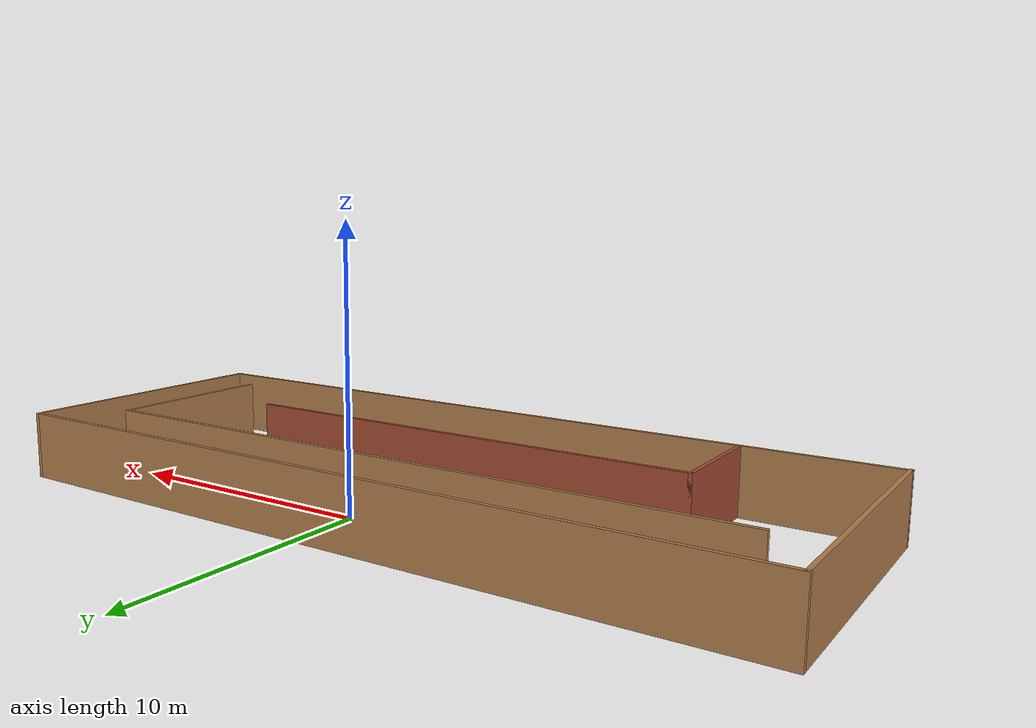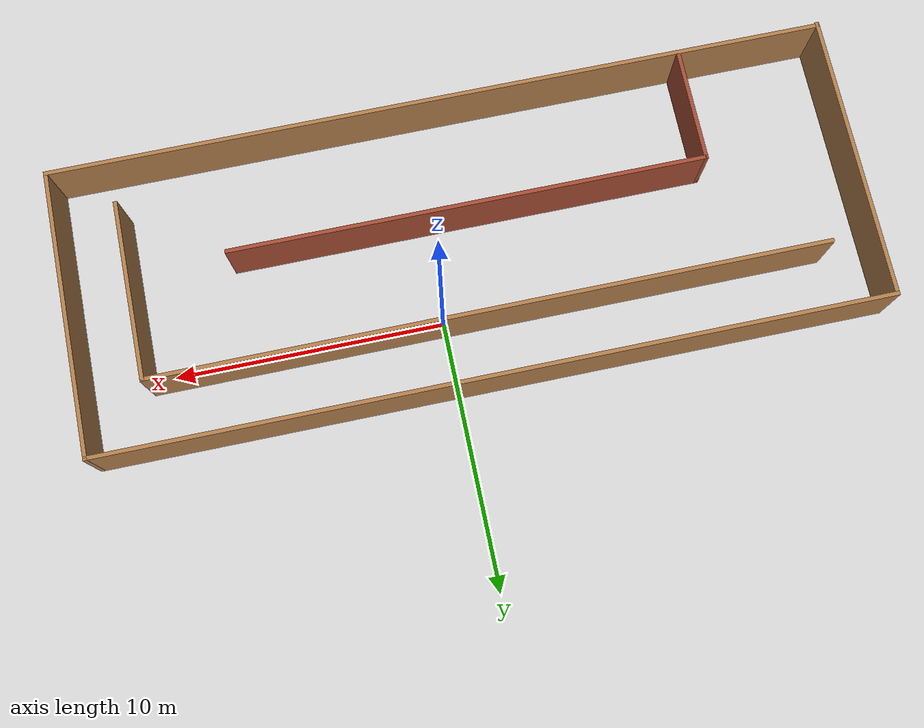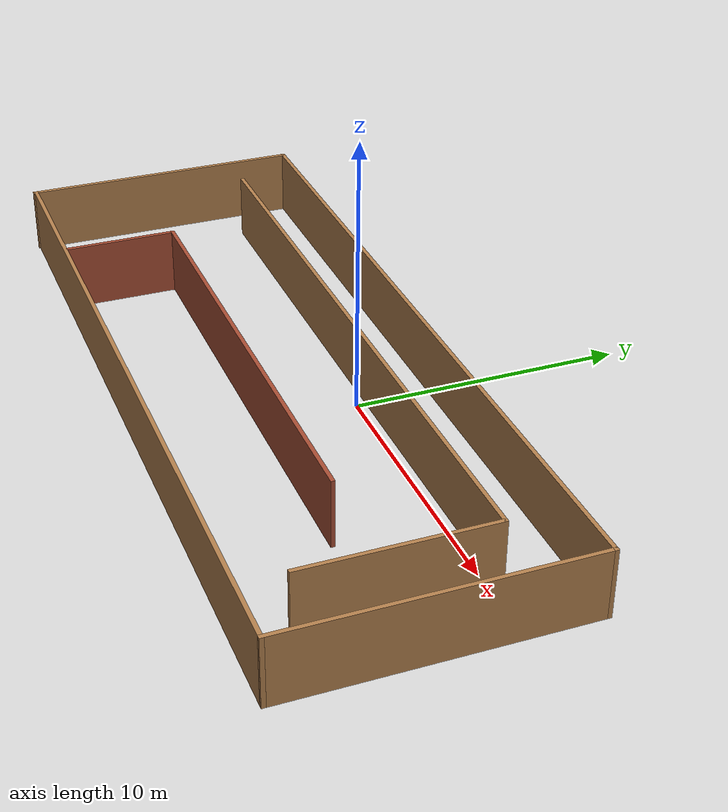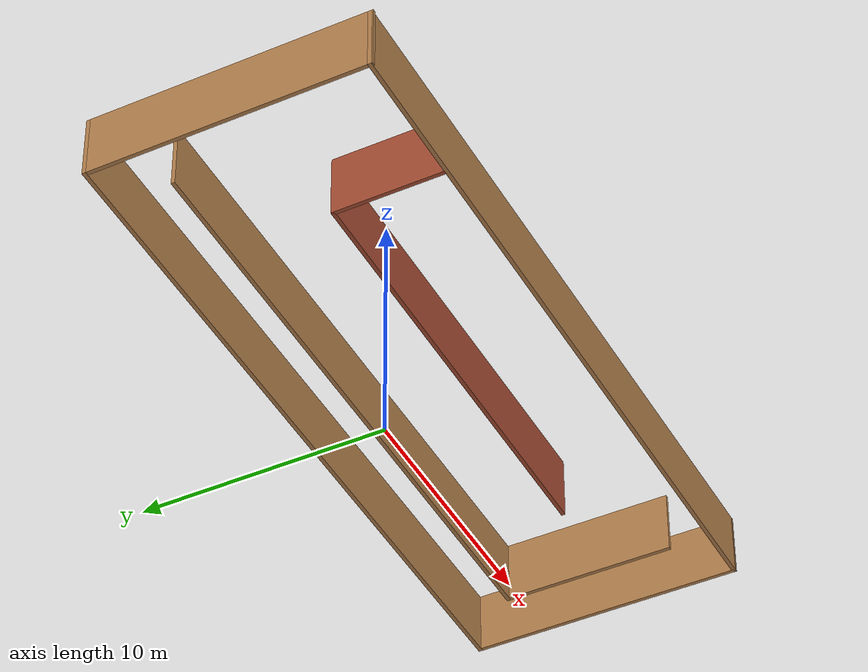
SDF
<?xml version='1.0'?>
<sdf version='1.7'>
  <model name='test'>
    <pose>-1.38212 -2.55158 0 0 -0 0</pose>
    <link name='Wall_0'>
      <collision name='Wall_0_Collision'>
        <geometry>
          <box>
            <size>10.75 0.15 2.5</size>
          </box>
        </geometry>
        <pose>0 0 1.25 0 -0 0</pose>
      </collision>
      <visual name='Wall_0_Visual'>
        <pose>0 0 1.25 0 -0 0</pose>
        <geometry>
          <box>
            <size>10.75 0.15 2.5</size>
          </box>
        </geometry>
        <material>
          <script>
            <uri>file://media/materials/scripts/gazebo.material</uri>
            <name>Gazebo/Wood</name>
          </script>
          <ambient>1 1 1 1</ambient>
        </material>
        <meta>
          <layer>0</layer>
        </meta>
      </visual>
      <pose>-14.4508 -0.023152 0 0 -0 -1.5708</pose>
    </link>
    <link name='Wall_1'>
      <collision name='Wall_1_Collision'>
        <geometry>
          <box>
            <size>29.0518 0.15 2.5</size>
          </box>
        </geometry>
        <pose>0 0 1.25 0 -0 0</pose>
      </collision>
      <visual name='Wall_1_Visual'>
        <pose>0 0 1.25 0 -0 0</pose>
        <geometry>
          <box>
            <size>29.0518 0.15 2.5</size>
          </box>
        </geometry>
        <material>
          <script>
            <uri>file://media/materials/scripts/gazebo.material</uri>
            <name>Gazebo/Wood</name>
          </script>
          <ambient>1 1 1 1</ambient>
        </material>
        <meta>
          <layer>0</layer>
        </meta>
      </visual>
      <pose>0 -5.2851 0 0 -0 -0.000568</pose>
    </link>
    <link name='Wall_2'>
      <collision name='Wall_2_Collision'>
        <geometry>
          <box>
            <size>10.75 0.15 2.5</size>
          </box>
        </geometry>
        <pose>0 0 1.25 0 -0 0</pose>
      </collision>
      <visual name='Wall_2_Visual'>
        <pose>0 0 1.25 0 -0 0</pose>
        <geometry>
          <box>
            <size>10.75 0.15 2.5</size>
          </box>
        </geometry>
        <material>
          <script>
            <uri>file://media/materials/scripts/gazebo.material</uri>
            <name>Gazebo/Wood</name>
          </script>
          <ambient>1 1 1 1</ambient>
        </material>
        <meta>
          <layer>0</layer>
        </meta>
      </visual>
      <pose>14.4508 0.006687 0 0 -0 1.5708</pose>
    </link>
    <link name='Wall_20'>
      <collision name='Wall_20_Collision'>
        <geometry>
          <box>
            <size>4.25 0.15 2.5</size>
          </box>
        </geometry>
        <pose>0 0 1.25 0 -0 0</pose>
      </collision>
      <visual name='Wall_20_Visual'>
        <pose>0 0 1.25 0 -0 0</pose>
        <geometry>
          <box>
            <size>4.25 0.15 2.5</size>
          </box>
        </geometry>
        <material>
          <script>
            <uri>file://media/materials/scripts/gazebo.material</uri>
            <name>Gazebo/Bricks</name>
          </script>
          <ambient>1 1 1 1</ambient>
        </material>
        <meta>
          <layer>0</layer>
        </meta>
      </visual>
      <pose>-9.09972 -3.09968 0 0 -0 1.5708</pose>
    </link>
    <link name='Wall_21'>
      <collision name='Wall_21_Collision'>
        <geometry>
          <box>
            <size>17.75 0.15 2.5</size>
          </box>
        </geometry>
        <pose>0 0 1.25 0 -0 0</pose>
      </collision>
      <visual name='Wall_21_Visual'>
        <pose>0 0 1.25 0 -0 0</pose>
        <geometry>
          <box>
            <size>17.75 0.15 2.5</size>
          </box>
        </geometry>
        <material>
          <script>
            <uri>file://media/materials/scripts/gazebo.material</uri>
            <name>Gazebo/Bricks</name>
          </script>
          <ambient>1 1 1 1</ambient>
        </material>
        <meta>
          <layer>0</layer>
        </meta>
      </visual>
      <pose>-0.299724 -1.04968 0 0 -0 0</pose>
    </link>
    <link name='Wall_3'>
      <collision name='Wall_3_Collision'>
        <geometry>
          <box>
            <size>29.0518 0.15 2.5</size>
          </box>
        </geometry>
        <pose>0 0 1.25 0 -0 0</pose>
      </collision>
      <visual name='Wall_3_Visual'>
        <pose>0 0 1.25 0 -0 0</pose>
        <geometry>
          <box>
            <size>29.0518 0.15 2.5</size>
          </box>
        </geometry>
        <material>
          <script>
            <uri>file://media/materials/scripts/gazebo.material</uri>
            <name>Gazebo/Wood</name>
          </script>
          <ambient>1 1 1 1</ambient>
        </material>
        <meta>
          <layer>0</layer>
        </meta>
      </visual>
      <pose>0 5.3149 0 0 -0 3.14102</pose>
    </link>
    <link name='Wall_5'>
      <collision name='Wall_5_Collision'>
        <geometry>
          <box>
            <size>25 0.15 2.5</size>
          </box>
        </geometry>
        <pose>0 0 1.25 0 -0 0</pose>
      </collision>
      <visual name='Wall_5_Visual'>
        <pose>0 0 1.25 0 -0 0</pose>
        <geometry>
          <box>
            <size>25 0.15 2.5</size>
          </box>
        </geometry>
        <material>
          <script>
            <uri>file://media/materials/scripts/gazebo.material</uri>
            <name>Gazebo/Wood</name>
          </script>
          <ambient>1 1 1 1</ambient>
        </material>
        <meta>
          <layer>0</layer>
        </meta>
      </visual>
      <pose>-0.285834 2.95741 0 0 -0 0</pose>
    </link>
    <link name='Wall_6'>
      <collision name='Wall_6_Collision'>
        <geometry>
          <box>
            <size>6.75 0.15 2.5</size>
          </box>
        </geometry>
        <pose>0 0 1.25 0 -0 0</pose>
      </collision>
      <visual name='Wall_6_Visual'>
        <pose>0 0 1.25 0 -0 0</pose>
        <geometry>
          <box>
            <size>6.75 0.15 2.5</size>
          </box>
        </geometry>
        <material>
          <script>
            <uri>file://media/materials/scripts/gazebo.material</uri>
            <name>Gazebo/Wood</name>
          </script>
          <ambient>1 1 1 1</ambient>
        </material>
        <meta>
          <layer>0</layer>
        </meta>
      </visual>
      <pose>12.1392 -0.342593 0 0 -0 -1.5708</pose>
    </link>
    <static>1</static>
  </model>
</sdf>
